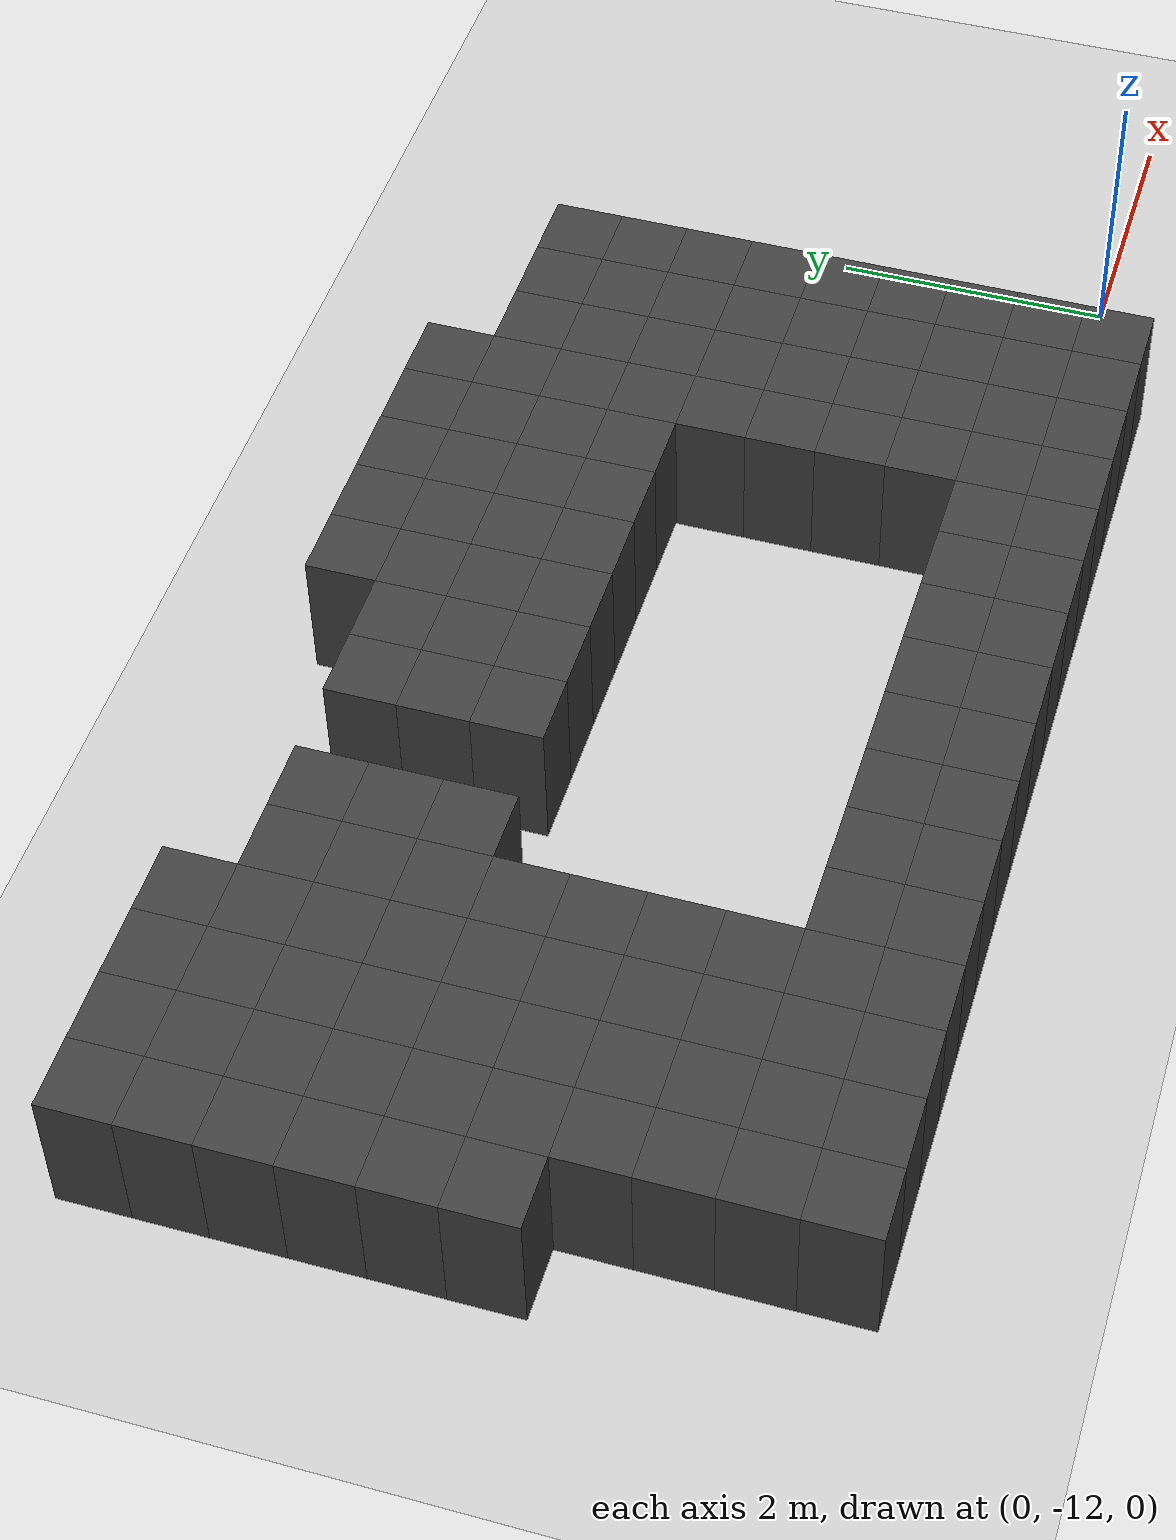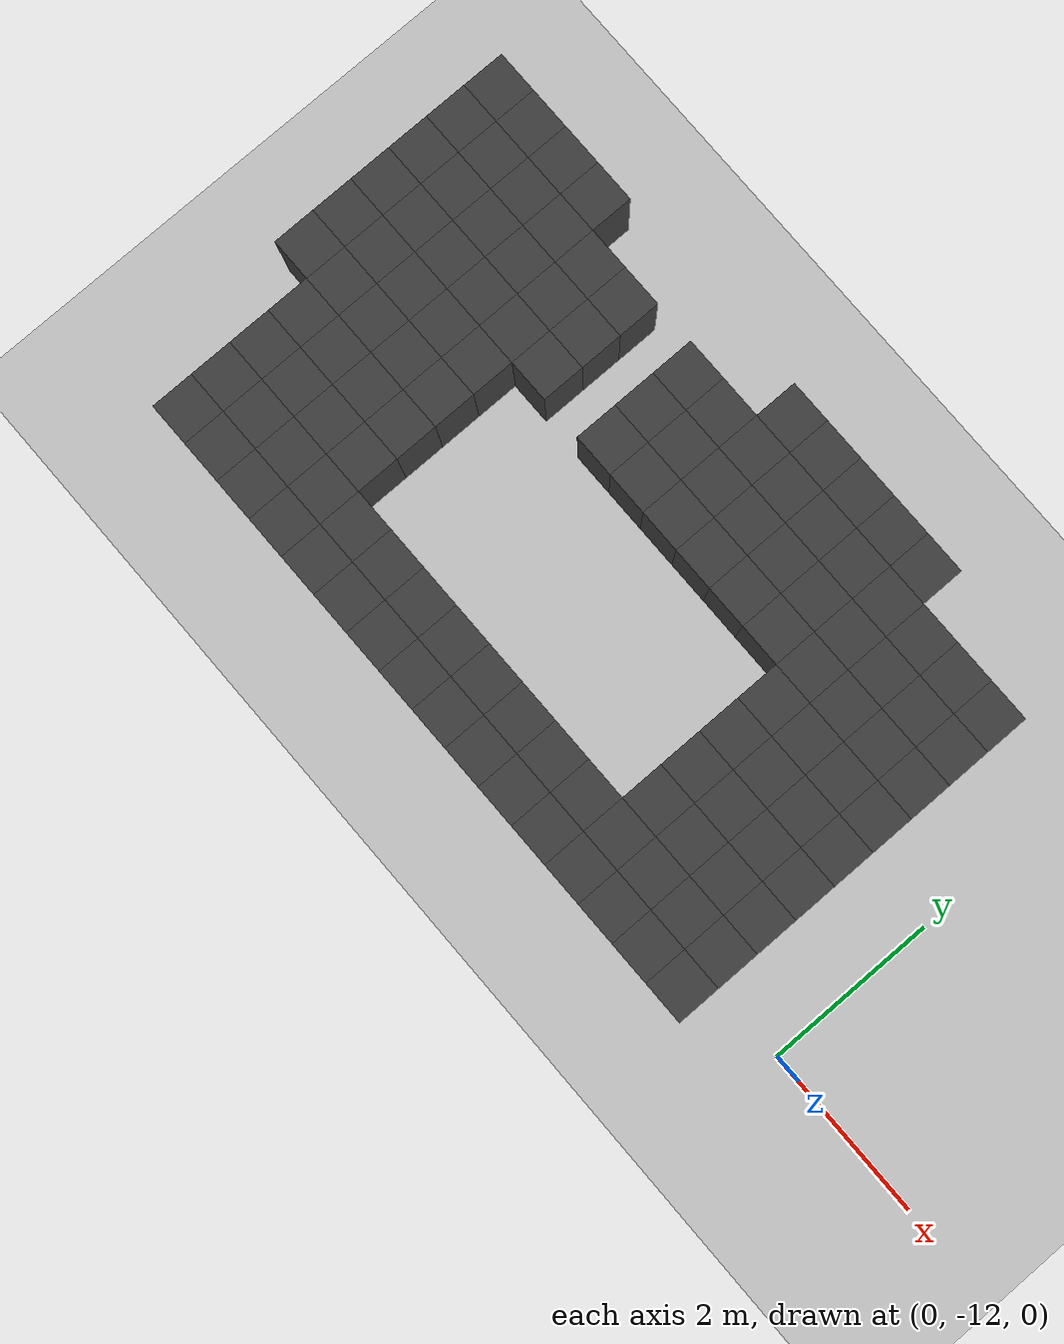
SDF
<sdf version="1.7">
 <world name="map_13994">
  <model name="ground_plane">
   <static>true</static>
   <link name="link">
    <collision name="collision">
     <geometry><plane><normal>0 0 1</normal><size>200 200</size></plane></geometry>
    </collision>
    <visual name="visual">
     <geometry><plane><normal>0 0 1</normal><size>200 200</size></plane></geometry>
     <material><ambient>0.8 0.8 0.8 1</ambient><diffuse>0.8 0.8 0.8 1</diffuse></material>
    </visual>
   </link>
  </model>
  <model name="maze_environment">
   <static>true</static>
   <link name="wall_1338">
    <pose>-9.250 -7.750 0.500 0 0 0</pose>
    <collision name="col"><geometry><box><size>0.5 0.5 1.0</size></box></geometry></collision>
    <visual name="vis">
     <geometry><box><size>0.5 0.5 1.0</size></box></geometry>
     <material><ambient>0.15 0.15 0.15 1</ambient><diffuse>0.25 0.25 0.25 1</diffuse></material>
    </visual>
   </link>
   <link name="wall_1339">
    <pose>-8.750 -7.750 0.500 0 0 0</pose>
    <collision name="col"><geometry><box><size>0.5 0.5 1.0</size></box></geometry></collision>
    <visual name="vis">
     <geometry><box><size>0.5 0.5 1.0</size></box></geometry>
     <material><ambient>0.15 0.15 0.15 1</ambient><diffuse>0.25 0.25 0.25 1</diffuse></material>
    </visual>
   </link>
   <link name="wall_1340">
    <pose>-8.250 -7.750 0.500 0 0 0</pose>
    <collision name="col"><geometry><box><size>0.5 0.5 1.0</size></box></geometry></collision>
    <visual name="vis">
     <geometry><box><size>0.5 0.5 1.0</size></box></geometry>
     <material><ambient>0.15 0.15 0.15 1</ambient><diffuse>0.25 0.25 0.25 1</diffuse></material>
    </visual>
   </link>
   <link name="wall_1341">
    <pose>-7.750 -7.750 0.500 0 0 0</pose>
    <collision name="col"><geometry><box><size>0.5 0.5 1.0</size></box></geometry></collision>
    <visual name="vis">
     <geometry><box><size>0.5 0.5 1.0</size></box></geometry>
     <material><ambient>0.15 0.15 0.15 1</ambient><diffuse>0.25 0.25 0.25 1</diffuse></material>
    </visual>
   </link>
   <link name="wall_1342">
    <pose>-4.750 -7.750 0.500 0 0 0</pose>
    <collision name="col"><geometry><box><size>0.5 0.5 1.0</size></box></geometry></collision>
    <visual name="vis">
     <geometry><box><size>0.5 0.5 1.0</size></box></geometry>
     <material><ambient>0.15 0.15 0.15 1</ambient><diffuse>0.25 0.25 0.25 1</diffuse></material>
    </visual>
   </link>
   <link name="wall_1343">
    <pose>-4.250 -7.750 0.500 0 0 0</pose>
    <collision name="col"><geometry><box><size>0.5 0.5 1.0</size></box></geometry></collision>
    <visual name="vis">
     <geometry><box><size>0.5 0.5 1.0</size></box></geometry>
     <material><ambient>0.15 0.15 0.15 1</ambient><diffuse>0.25 0.25 0.25 1</diffuse></material>
    </visual>
   </link>
   <link name="wall_1344">
    <pose>-3.750 -7.750 0.500 0 0 0</pose>
    <collision name="col"><geometry><box><size>0.5 0.5 1.0</size></box></geometry></collision>
    <visual name="vis">
     <geometry><box><size>0.5 0.5 1.0</size></box></geometry>
     <material><ambient>0.15 0.15 0.15 1</ambient><diffuse>0.25 0.25 0.25 1</diffuse></material>
    </visual>
   </link>
   <link name="wall_1345">
    <pose>-3.250 -7.750 0.500 0 0 0</pose>
    <collision name="col"><geometry><box><size>0.5 0.5 1.0</size></box></geometry></collision>
    <visual name="vis">
     <geometry><box><size>0.5 0.5 1.0</size></box></geometry>
     <material><ambient>0.15 0.15 0.15 1</ambient><diffuse>0.25 0.25 0.25 1</diffuse></material>
    </visual>
   </link>
   <link name="wall_1346">
    <pose>-2.750 -7.750 0.500 0 0 0</pose>
    <collision name="col"><geometry><box><size>0.5 0.5 1.0</size></box></geometry></collision>
    <visual name="vis">
     <geometry><box><size>0.5 0.5 1.0</size></box></geometry>
     <material><ambient>0.15 0.15 0.15 1</ambient><diffuse>0.25 0.25 0.25 1</diffuse></material>
    </visual>
   </link>
   <link name="wall_1377">
    <pose>-9.250 -8.250 0.500 0 0 0</pose>
    <collision name="col"><geometry><box><size>0.5 0.5 1.0</size></box></geometry></collision>
    <visual name="vis">
     <geometry><box><size>0.5 0.5 1.0</size></box></geometry>
     <material><ambient>0.15 0.15 0.15 1</ambient><diffuse>0.25 0.25 0.25 1</diffuse></material>
    </visual>
   </link>
   <link name="wall_1378">
    <pose>-8.750 -8.250 0.500 0 0 0</pose>
    <collision name="col"><geometry><box><size>0.5 0.5 1.0</size></box></geometry></collision>
    <visual name="vis">
     <geometry><box><size>0.5 0.5 1.0</size></box></geometry>
     <material><ambient>0.15 0.15 0.15 1</ambient><diffuse>0.25 0.25 0.25 1</diffuse></material>
    </visual>
   </link>
   <link name="wall_1379">
    <pose>-8.250 -8.250 0.500 0 0 0</pose>
    <collision name="col"><geometry><box><size>0.5 0.5 1.0</size></box></geometry></collision>
    <visual name="vis">
     <geometry><box><size>0.5 0.5 1.0</size></box></geometry>
     <material><ambient>0.15 0.15 0.15 1</ambient><diffuse>0.25 0.25 0.25 1</diffuse></material>
    </visual>
   </link>
   <link name="wall_1380">
    <pose>-7.750 -8.250 0.500 0 0 0</pose>
    <collision name="col"><geometry><box><size>0.5 0.5 1.0</size></box></geometry></collision>
    <visual name="vis">
     <geometry><box><size>0.5 0.5 1.0</size></box></geometry>
     <material><ambient>0.15 0.15 0.15 1</ambient><diffuse>0.25 0.25 0.25 1</diffuse></material>
    </visual>
   </link>
   <link name="wall_1381">
    <pose>-7.250 -8.250 0.500 0 0 0</pose>
    <collision name="col"><geometry><box><size>0.5 0.5 1.0</size></box></geometry></collision>
    <visual name="vis">
     <geometry><box><size>0.5 0.5 1.0</size></box></geometry>
     <material><ambient>0.15 0.15 0.15 1</ambient><diffuse>0.25 0.25 0.25 1</diffuse></material>
    </visual>
   </link>
   <link name="wall_1382">
    <pose>-6.750 -8.250 0.500 0 0 0</pose>
    <collision name="col"><geometry><box><size>0.5 0.5 1.0</size></box></geometry></collision>
    <visual name="vis">
     <geometry><box><size>0.5 0.5 1.0</size></box></geometry>
     <material><ambient>0.15 0.15 0.15 1</ambient><diffuse>0.25 0.25 0.25 1</diffuse></material>
    </visual>
   </link>
   <link name="wall_1383">
    <pose>-5.750 -8.250 0.500 0 0 0</pose>
    <collision name="col"><geometry><box><size>0.5 0.5 1.0</size></box></geometry></collision>
    <visual name="vis">
     <geometry><box><size>0.5 0.5 1.0</size></box></geometry>
     <material><ambient>0.15 0.15 0.15 1</ambient><diffuse>0.25 0.25 0.25 1</diffuse></material>
    </visual>
   </link>
   <link name="wall_1384">
    <pose>-5.250 -8.250 0.500 0 0 0</pose>
    <collision name="col"><geometry><box><size>0.5 0.5 1.0</size></box></geometry></collision>
    <visual name="vis">
     <geometry><box><size>0.5 0.5 1.0</size></box></geometry>
     <material><ambient>0.15 0.15 0.15 1</ambient><diffuse>0.25 0.25 0.25 1</diffuse></material>
    </visual>
   </link>
   <link name="wall_1385">
    <pose>-4.750 -8.250 0.500 0 0 0</pose>
    <collision name="col"><geometry><box><size>0.5 0.5 1.0</size></box></geometry></collision>
    <visual name="vis">
     <geometry><box><size>0.5 0.5 1.0</size></box></geometry>
     <material><ambient>0.15 0.15 0.15 1</ambient><diffuse>0.25 0.25 0.25 1</diffuse></material>
    </visual>
   </link>
   <link name="wall_1386">
    <pose>-4.250 -8.250 0.500 0 0 0</pose>
    <collision name="col"><geometry><box><size>0.5 0.5 1.0</size></box></geometry></collision>
    <visual name="vis">
     <geometry><box><size>0.5 0.5 1.0</size></box></geometry>
     <material><ambient>0.15 0.15 0.15 1</ambient><diffuse>0.25 0.25 0.25 1</diffuse></material>
    </visual>
   </link>
   <link name="wall_1387">
    <pose>-3.750 -8.250 0.500 0 0 0</pose>
    <collision name="col"><geometry><box><size>0.5 0.5 1.0</size></box></geometry></collision>
    <visual name="vis">
     <geometry><box><size>0.5 0.5 1.0</size></box></geometry>
     <material><ambient>0.15 0.15 0.15 1</ambient><diffuse>0.25 0.25 0.25 1</diffuse></material>
    </visual>
   </link>
   <link name="wall_1388">
    <pose>-3.250 -8.250 0.500 0 0 0</pose>
    <collision name="col"><geometry><box><size>0.5 0.5 1.0</size></box></geometry></collision>
    <visual name="vis">
     <geometry><box><size>0.5 0.5 1.0</size></box></geometry>
     <material><ambient>0.15 0.15 0.15 1</ambient><diffuse>0.25 0.25 0.25 1</diffuse></material>
    </visual>
   </link>
   <link name="wall_1389">
    <pose>-2.750 -8.250 0.500 0 0 0</pose>
    <collision name="col"><geometry><box><size>0.5 0.5 1.0</size></box></geometry></collision>
    <visual name="vis">
     <geometry><box><size>0.5 0.5 1.0</size></box></geometry>
     <material><ambient>0.15 0.15 0.15 1</ambient><diffuse>0.25 0.25 0.25 1</diffuse></material>
    </visual>
   </link>
   <link name="wall_1390">
    <pose>-2.250 -8.250 0.500 0 0 0</pose>
    <collision name="col"><geometry><box><size>0.5 0.5 1.0</size></box></geometry></collision>
    <visual name="vis">
     <geometry><box><size>0.5 0.5 1.0</size></box></geometry>
     <material><ambient>0.15 0.15 0.15 1</ambient><diffuse>0.25 0.25 0.25 1</diffuse></material>
    </visual>
   </link>
   <link name="wall_1391">
    <pose>-1.750 -8.250 0.500 0 0 0</pose>
    <collision name="col"><geometry><box><size>0.5 0.5 1.0</size></box></geometry></collision>
    <visual name="vis">
     <geometry><box><size>0.5 0.5 1.0</size></box></geometry>
     <material><ambient>0.15 0.15 0.15 1</ambient><diffuse>0.25 0.25 0.25 1</diffuse></material>
    </visual>
   </link>
   <link name="wall_1392">
    <pose>-1.250 -8.250 0.500 0 0 0</pose>
    <collision name="col"><geometry><box><size>0.5 0.5 1.0</size></box></geometry></collision>
    <visual name="vis">
     <geometry><box><size>0.5 0.5 1.0</size></box></geometry>
     <material><ambient>0.15 0.15 0.15 1</ambient><diffuse>0.25 0.25 0.25 1</diffuse></material>
    </visual>
   </link>
   <link name="wall_1420">
    <pose>-9.250 -8.750 0.500 0 0 0</pose>
    <collision name="col"><geometry><box><size>0.5 0.5 1.0</size></box></geometry></collision>
    <visual name="vis">
     <geometry><box><size>0.5 0.5 1.0</size></box></geometry>
     <material><ambient>0.15 0.15 0.15 1</ambient><diffuse>0.25 0.25 0.25 1</diffuse></material>
    </visual>
   </link>
   <link name="wall_1421">
    <pose>-8.750 -8.750 0.500 0 0 0</pose>
    <collision name="col"><geometry><box><size>0.5 0.5 1.0</size></box></geometry></collision>
    <visual name="vis">
     <geometry><box><size>0.5 0.5 1.0</size></box></geometry>
     <material><ambient>0.15 0.15 0.15 1</ambient><diffuse>0.25 0.25 0.25 1</diffuse></material>
    </visual>
   </link>
   <link name="wall_1422">
    <pose>-8.250 -8.750 0.500 0 0 0</pose>
    <collision name="col"><geometry><box><size>0.5 0.5 1.0</size></box></geometry></collision>
    <visual name="vis">
     <geometry><box><size>0.5 0.5 1.0</size></box></geometry>
     <material><ambient>0.15 0.15 0.15 1</ambient><diffuse>0.25 0.25 0.25 1</diffuse></material>
    </visual>
   </link>
   <link name="wall_1423">
    <pose>-7.750 -8.750 0.500 0 0 0</pose>
    <collision name="col"><geometry><box><size>0.5 0.5 1.0</size></box></geometry></collision>
    <visual name="vis">
     <geometry><box><size>0.5 0.5 1.0</size></box></geometry>
     <material><ambient>0.15 0.15 0.15 1</ambient><diffuse>0.25 0.25 0.25 1</diffuse></material>
    </visual>
   </link>
   <link name="wall_1424">
    <pose>-7.250 -8.750 0.500 0 0 0</pose>
    <collision name="col"><geometry><box><size>0.5 0.5 1.0</size></box></geometry></collision>
    <visual name="vis">
     <geometry><box><size>0.5 0.5 1.0</size></box></geometry>
     <material><ambient>0.15 0.15 0.15 1</ambient><diffuse>0.25 0.25 0.25 1</diffuse></material>
    </visual>
   </link>
   <link name="wall_1425">
    <pose>-6.750 -8.750 0.500 0 0 0</pose>
    <collision name="col"><geometry><box><size>0.5 0.5 1.0</size></box></geometry></collision>
    <visual name="vis">
     <geometry><box><size>0.5 0.5 1.0</size></box></geometry>
     <material><ambient>0.15 0.15 0.15 1</ambient><diffuse>0.25 0.25 0.25 1</diffuse></material>
    </visual>
   </link>
   <link name="wall_1426">
    <pose>-5.750 -8.750 0.500 0 0 0</pose>
    <collision name="col"><geometry><box><size>0.5 0.5 1.0</size></box></geometry></collision>
    <visual name="vis">
     <geometry><box><size>0.5 0.5 1.0</size></box></geometry>
     <material><ambient>0.15 0.15 0.15 1</ambient><diffuse>0.25 0.25 0.25 1</diffuse></material>
    </visual>
   </link>
   <link name="wall_1427">
    <pose>-5.250 -8.750 0.500 0 0 0</pose>
    <collision name="col"><geometry><box><size>0.5 0.5 1.0</size></box></geometry></collision>
    <visual name="vis">
     <geometry><box><size>0.5 0.5 1.0</size></box></geometry>
     <material><ambient>0.15 0.15 0.15 1</ambient><diffuse>0.25 0.25 0.25 1</diffuse></material>
    </visual>
   </link>
   <link name="wall_1428">
    <pose>-4.750 -8.750 0.500 0 0 0</pose>
    <collision name="col"><geometry><box><size>0.5 0.5 1.0</size></box></geometry></collision>
    <visual name="vis">
     <geometry><box><size>0.5 0.5 1.0</size></box></geometry>
     <material><ambient>0.15 0.15 0.15 1</ambient><diffuse>0.25 0.25 0.25 1</diffuse></material>
    </visual>
   </link>
   <link name="wall_1429">
    <pose>-4.250 -8.750 0.500 0 0 0</pose>
    <collision name="col"><geometry><box><size>0.5 0.5 1.0</size></box></geometry></collision>
    <visual name="vis">
     <geometry><box><size>0.5 0.5 1.0</size></box></geometry>
     <material><ambient>0.15 0.15 0.15 1</ambient><diffuse>0.25 0.25 0.25 1</diffuse></material>
    </visual>
   </link>
   <link name="wall_1430">
    <pose>-3.750 -8.750 0.500 0 0 0</pose>
    <collision name="col"><geometry><box><size>0.5 0.5 1.0</size></box></geometry></collision>
    <visual name="vis">
     <geometry><box><size>0.5 0.5 1.0</size></box></geometry>
     <material><ambient>0.15 0.15 0.15 1</ambient><diffuse>0.25 0.25 0.25 1</diffuse></material>
    </visual>
   </link>
   <link name="wall_1431">
    <pose>-3.250 -8.750 0.500 0 0 0</pose>
    <collision name="col"><geometry><box><size>0.5 0.5 1.0</size></box></geometry></collision>
    <visual name="vis">
     <geometry><box><size>0.5 0.5 1.0</size></box></geometry>
     <material><ambient>0.15 0.15 0.15 1</ambient><diffuse>0.25 0.25 0.25 1</diffuse></material>
    </visual>
   </link>
   <link name="wall_1432">
    <pose>-2.750 -8.750 0.500 0 0 0</pose>
    <collision name="col"><geometry><box><size>0.5 0.5 1.0</size></box></geometry></collision>
    <visual name="vis">
     <geometry><box><size>0.5 0.5 1.0</size></box></geometry>
     <material><ambient>0.15 0.15 0.15 1</ambient><diffuse>0.25 0.25 0.25 1</diffuse></material>
    </visual>
   </link>
   <link name="wall_1433">
    <pose>-2.250 -8.750 0.500 0 0 0</pose>
    <collision name="col"><geometry><box><size>0.5 0.5 1.0</size></box></geometry></collision>
    <visual name="vis">
     <geometry><box><size>0.5 0.5 1.0</size></box></geometry>
     <material><ambient>0.15 0.15 0.15 1</ambient><diffuse>0.25 0.25 0.25 1</diffuse></material>
    </visual>
   </link>
   <link name="wall_1434">
    <pose>-1.750 -8.750 0.500 0 0 0</pose>
    <collision name="col"><geometry><box><size>0.5 0.5 1.0</size></box></geometry></collision>
    <visual name="vis">
     <geometry><box><size>0.5 0.5 1.0</size></box></geometry>
     <material><ambient>0.15 0.15 0.15 1</ambient><diffuse>0.25 0.25 0.25 1</diffuse></material>
    </visual>
   </link>
   <link name="wall_1435">
    <pose>-1.250 -8.750 0.500 0 0 0</pose>
    <collision name="col"><geometry><box><size>0.5 0.5 1.0</size></box></geometry></collision>
    <visual name="vis">
     <geometry><box><size>0.5 0.5 1.0</size></box></geometry>
     <material><ambient>0.15 0.15 0.15 1</ambient><diffuse>0.25 0.25 0.25 1</diffuse></material>
    </visual>
   </link>
   <link name="wall_1463">
    <pose>-9.250 -9.250 0.500 0 0 0</pose>
    <collision name="col"><geometry><box><size>0.5 0.5 1.0</size></box></geometry></collision>
    <visual name="vis">
     <geometry><box><size>0.5 0.5 1.0</size></box></geometry>
     <material><ambient>0.15 0.15 0.15 1</ambient><diffuse>0.25 0.25 0.25 1</diffuse></material>
    </visual>
   </link>
   <link name="wall_1464">
    <pose>-8.750 -9.250 0.500 0 0 0</pose>
    <collision name="col"><geometry><box><size>0.5 0.5 1.0</size></box></geometry></collision>
    <visual name="vis">
     <geometry><box><size>0.5 0.5 1.0</size></box></geometry>
     <material><ambient>0.15 0.15 0.15 1</ambient><diffuse>0.25 0.25 0.25 1</diffuse></material>
    </visual>
   </link>
   <link name="wall_1465">
    <pose>-8.250 -9.250 0.500 0 0 0</pose>
    <collision name="col"><geometry><box><size>0.5 0.5 1.0</size></box></geometry></collision>
    <visual name="vis">
     <geometry><box><size>0.5 0.5 1.0</size></box></geometry>
     <material><ambient>0.15 0.15 0.15 1</ambient><diffuse>0.25 0.25 0.25 1</diffuse></material>
    </visual>
   </link>
   <link name="wall_1466">
    <pose>-7.750 -9.250 0.500 0 0 0</pose>
    <collision name="col"><geometry><box><size>0.5 0.5 1.0</size></box></geometry></collision>
    <visual name="vis">
     <geometry><box><size>0.5 0.5 1.0</size></box></geometry>
     <material><ambient>0.15 0.15 0.15 1</ambient><diffuse>0.25 0.25 0.25 1</diffuse></material>
    </visual>
   </link>
   <link name="wall_1467">
    <pose>-7.250 -9.250 0.500 0 0 0</pose>
    <collision name="col"><geometry><box><size>0.5 0.5 1.0</size></box></geometry></collision>
    <visual name="vis">
     <geometry><box><size>0.5 0.5 1.0</size></box></geometry>
     <material><ambient>0.15 0.15 0.15 1</ambient><diffuse>0.25 0.25 0.25 1</diffuse></material>
    </visual>
   </link>
   <link name="wall_1468">
    <pose>-6.750 -9.250 0.500 0 0 0</pose>
    <collision name="col"><geometry><box><size>0.5 0.5 1.0</size></box></geometry></collision>
    <visual name="vis">
     <geometry><box><size>0.5 0.5 1.0</size></box></geometry>
     <material><ambient>0.15 0.15 0.15 1</ambient><diffuse>0.25 0.25 0.25 1</diffuse></material>
    </visual>
   </link>
   <link name="wall_1469">
    <pose>-5.750 -9.250 0.500 0 0 0</pose>
    <collision name="col"><geometry><box><size>0.5 0.5 1.0</size></box></geometry></collision>
    <visual name="vis">
     <geometry><box><size>0.5 0.5 1.0</size></box></geometry>
     <material><ambient>0.15 0.15 0.15 1</ambient><diffuse>0.25 0.25 0.25 1</diffuse></material>
    </visual>
   </link>
   <link name="wall_1470">
    <pose>-5.250 -9.250 0.500 0 0 0</pose>
    <collision name="col"><geometry><box><size>0.5 0.5 1.0</size></box></geometry></collision>
    <visual name="vis">
     <geometry><box><size>0.5 0.5 1.0</size></box></geometry>
     <material><ambient>0.15 0.15 0.15 1</ambient><diffuse>0.25 0.25 0.25 1</diffuse></material>
    </visual>
   </link>
   <link name="wall_1471">
    <pose>-4.750 -9.250 0.500 0 0 0</pose>
    <collision name="col"><geometry><box><size>0.5 0.5 1.0</size></box></geometry></collision>
    <visual name="vis">
     <geometry><box><size>0.5 0.5 1.0</size></box></geometry>
     <material><ambient>0.15 0.15 0.15 1</ambient><diffuse>0.25 0.25 0.25 1</diffuse></material>
    </visual>
   </link>
   <link name="wall_1472">
    <pose>-4.250 -9.250 0.500 0 0 0</pose>
    <collision name="col"><geometry><box><size>0.5 0.5 1.0</size></box></geometry></collision>
    <visual name="vis">
     <geometry><box><size>0.5 0.5 1.0</size></box></geometry>
     <material><ambient>0.15 0.15 0.15 1</ambient><diffuse>0.25 0.25 0.25 1</diffuse></material>
    </visual>
   </link>
   <link name="wall_1473">
    <pose>-3.750 -9.250 0.500 0 0 0</pose>
    <collision name="col"><geometry><box><size>0.5 0.5 1.0</size></box></geometry></collision>
    <visual name="vis">
     <geometry><box><size>0.5 0.5 1.0</size></box></geometry>
     <material><ambient>0.15 0.15 0.15 1</ambient><diffuse>0.25 0.25 0.25 1</diffuse></material>
    </visual>
   </link>
   <link name="wall_1474">
    <pose>-3.250 -9.250 0.500 0 0 0</pose>
    <collision name="col"><geometry><box><size>0.5 0.5 1.0</size></box></geometry></collision>
    <visual name="vis">
     <geometry><box><size>0.5 0.5 1.0</size></box></geometry>
     <material><ambient>0.15 0.15 0.15 1</ambient><diffuse>0.25 0.25 0.25 1</diffuse></material>
    </visual>
   </link>
   <link name="wall_1475">
    <pose>-2.750 -9.250 0.500 0 0 0</pose>
    <collision name="col"><geometry><box><size>0.5 0.5 1.0</size></box></geometry></collision>
    <visual name="vis">
     <geometry><box><size>0.5 0.5 1.0</size></box></geometry>
     <material><ambient>0.15 0.15 0.15 1</ambient><diffuse>0.25 0.25 0.25 1</diffuse></material>
    </visual>
   </link>
   <link name="wall_1476">
    <pose>-2.250 -9.250 0.500 0 0 0</pose>
    <collision name="col"><geometry><box><size>0.5 0.5 1.0</size></box></geometry></collision>
    <visual name="vis">
     <geometry><box><size>0.5 0.5 1.0</size></box></geometry>
     <material><ambient>0.15 0.15 0.15 1</ambient><diffuse>0.25 0.25 0.25 1</diffuse></material>
    </visual>
   </link>
   <link name="wall_1477">
    <pose>-1.750 -9.250 0.500 0 0 0</pose>
    <collision name="col"><geometry><box><size>0.5 0.5 1.0</size></box></geometry></collision>
    <visual name="vis">
     <geometry><box><size>0.5 0.5 1.0</size></box></geometry>
     <material><ambient>0.15 0.15 0.15 1</ambient><diffuse>0.25 0.25 0.25 1</diffuse></material>
    </visual>
   </link>
   <link name="wall_1478">
    <pose>-1.250 -9.250 0.500 0 0 0</pose>
    <collision name="col"><geometry><box><size>0.5 0.5 1.0</size></box></geometry></collision>
    <visual name="vis">
     <geometry><box><size>0.5 0.5 1.0</size></box></geometry>
     <material><ambient>0.15 0.15 0.15 1</ambient><diffuse>0.25 0.25 0.25 1</diffuse></material>
    </visual>
   </link>
   <link name="wall_1506">
    <pose>-9.250 -9.750 0.500 0 0 0</pose>
    <collision name="col"><geometry><box><size>0.5 0.5 1.0</size></box></geometry></collision>
    <visual name="vis">
     <geometry><box><size>0.5 0.5 1.0</size></box></geometry>
     <material><ambient>0.15 0.15 0.15 1</ambient><diffuse>0.25 0.25 0.25 1</diffuse></material>
    </visual>
   </link>
   <link name="wall_1507">
    <pose>-8.750 -9.750 0.500 0 0 0</pose>
    <collision name="col"><geometry><box><size>0.5 0.5 1.0</size></box></geometry></collision>
    <visual name="vis">
     <geometry><box><size>0.5 0.5 1.0</size></box></geometry>
     <material><ambient>0.15 0.15 0.15 1</ambient><diffuse>0.25 0.25 0.25 1</diffuse></material>
    </visual>
   </link>
   <link name="wall_1508">
    <pose>-8.250 -9.750 0.500 0 0 0</pose>
    <collision name="col"><geometry><box><size>0.5 0.5 1.0</size></box></geometry></collision>
    <visual name="vis">
     <geometry><box><size>0.5 0.5 1.0</size></box></geometry>
     <material><ambient>0.15 0.15 0.15 1</ambient><diffuse>0.25 0.25 0.25 1</diffuse></material>
    </visual>
   </link>
   <link name="wall_1509">
    <pose>-7.750 -9.750 0.500 0 0 0</pose>
    <collision name="col"><geometry><box><size>0.5 0.5 1.0</size></box></geometry></collision>
    <visual name="vis">
     <geometry><box><size>0.5 0.5 1.0</size></box></geometry>
     <material><ambient>0.15 0.15 0.15 1</ambient><diffuse>0.25 0.25 0.25 1</diffuse></material>
    </visual>
   </link>
   <link name="wall_1510">
    <pose>-7.250 -9.750 0.500 0 0 0</pose>
    <collision name="col"><geometry><box><size>0.5 0.5 1.0</size></box></geometry></collision>
    <visual name="vis">
     <geometry><box><size>0.5 0.5 1.0</size></box></geometry>
     <material><ambient>0.15 0.15 0.15 1</ambient><diffuse>0.25 0.25 0.25 1</diffuse></material>
    </visual>
   </link>
   <link name="wall_1511">
    <pose>-2.750 -9.750 0.500 0 0 0</pose>
    <collision name="col"><geometry><box><size>0.5 0.5 1.0</size></box></geometry></collision>
    <visual name="vis">
     <geometry><box><size>0.5 0.5 1.0</size></box></geometry>
     <material><ambient>0.15 0.15 0.15 1</ambient><diffuse>0.25 0.25 0.25 1</diffuse></material>
    </visual>
   </link>
   <link name="wall_1512">
    <pose>-2.250 -9.750 0.500 0 0 0</pose>
    <collision name="col"><geometry><box><size>0.5 0.5 1.0</size></box></geometry></collision>
    <visual name="vis">
     <geometry><box><size>0.5 0.5 1.0</size></box></geometry>
     <material><ambient>0.15 0.15 0.15 1</ambient><diffuse>0.25 0.25 0.25 1</diffuse></material>
    </visual>
   </link>
   <link name="wall_1513">
    <pose>-1.750 -9.750 0.500 0 0 0</pose>
    <collision name="col"><geometry><box><size>0.5 0.5 1.0</size></box></geometry></collision>
    <visual name="vis">
     <geometry><box><size>0.5 0.5 1.0</size></box></geometry>
     <material><ambient>0.15 0.15 0.15 1</ambient><diffuse>0.25 0.25 0.25 1</diffuse></material>
    </visual>
   </link>
   <link name="wall_1514">
    <pose>-1.250 -9.750 0.500 0 0 0</pose>
    <collision name="col"><geometry><box><size>0.5 0.5 1.0</size></box></geometry></collision>
    <visual name="vis">
     <geometry><box><size>0.5 0.5 1.0</size></box></geometry>
     <material><ambient>0.15 0.15 0.15 1</ambient><diffuse>0.25 0.25 0.25 1</diffuse></material>
    </visual>
   </link>
   <link name="wall_1542">
    <pose>-9.250 -10.250 0.500 0 0 0</pose>
    <collision name="col"><geometry><box><size>0.5 0.5 1.0</size></box></geometry></collision>
    <visual name="vis">
     <geometry><box><size>0.5 0.5 1.0</size></box></geometry>
     <material><ambient>0.15 0.15 0.15 1</ambient><diffuse>0.25 0.25 0.25 1</diffuse></material>
    </visual>
   </link>
   <link name="wall_1543">
    <pose>-8.750 -10.250 0.500 0 0 0</pose>
    <collision name="col"><geometry><box><size>0.5 0.5 1.0</size></box></geometry></collision>
    <visual name="vis">
     <geometry><box><size>0.5 0.5 1.0</size></box></geometry>
     <material><ambient>0.15 0.15 0.15 1</ambient><diffuse>0.25 0.25 0.25 1</diffuse></material>
    </visual>
   </link>
   <link name="wall_1544">
    <pose>-8.250 -10.250 0.500 0 0 0</pose>
    <collision name="col"><geometry><box><size>0.5 0.5 1.0</size></box></geometry></collision>
    <visual name="vis">
     <geometry><box><size>0.5 0.5 1.0</size></box></geometry>
     <material><ambient>0.15 0.15 0.15 1</ambient><diffuse>0.25 0.25 0.25 1</diffuse></material>
    </visual>
   </link>
   <link name="wall_1545">
    <pose>-7.750 -10.250 0.500 0 0 0</pose>
    <collision name="col"><geometry><box><size>0.5 0.5 1.0</size></box></geometry></collision>
    <visual name="vis">
     <geometry><box><size>0.5 0.5 1.0</size></box></geometry>
     <material><ambient>0.15 0.15 0.15 1</ambient><diffuse>0.25 0.25 0.25 1</diffuse></material>
    </visual>
   </link>
   <link name="wall_1546">
    <pose>-7.250 -10.250 0.500 0 0 0</pose>
    <collision name="col"><geometry><box><size>0.5 0.5 1.0</size></box></geometry></collision>
    <visual name="vis">
     <geometry><box><size>0.5 0.5 1.0</size></box></geometry>
     <material><ambient>0.15 0.15 0.15 1</ambient><diffuse>0.25 0.25 0.25 1</diffuse></material>
    </visual>
   </link>
   <link name="wall_1547">
    <pose>-2.750 -10.250 0.500 0 0 0</pose>
    <collision name="col"><geometry><box><size>0.5 0.5 1.0</size></box></geometry></collision>
    <visual name="vis">
     <geometry><box><size>0.5 0.5 1.0</size></box></geometry>
     <material><ambient>0.15 0.15 0.15 1</ambient><diffuse>0.25 0.25 0.25 1</diffuse></material>
    </visual>
   </link>
   <link name="wall_1548">
    <pose>-2.250 -10.250 0.500 0 0 0</pose>
    <collision name="col"><geometry><box><size>0.5 0.5 1.0</size></box></geometry></collision>
    <visual name="vis">
     <geometry><box><size>0.5 0.5 1.0</size></box></geometry>
     <material><ambient>0.15 0.15 0.15 1</ambient><diffuse>0.25 0.25 0.25 1</diffuse></material>
    </visual>
   </link>
   <link name="wall_1549">
    <pose>-1.750 -10.250 0.500 0 0 0</pose>
    <collision name="col"><geometry><box><size>0.5 0.5 1.0</size></box></geometry></collision>
    <visual name="vis">
     <geometry><box><size>0.5 0.5 1.0</size></box></geometry>
     <material><ambient>0.15 0.15 0.15 1</ambient><diffuse>0.25 0.25 0.25 1</diffuse></material>
    </visual>
   </link>
   <link name="wall_1550">
    <pose>-1.250 -10.250 0.500 0 0 0</pose>
    <collision name="col"><geometry><box><size>0.5 0.5 1.0</size></box></geometry></collision>
    <visual name="vis">
     <geometry><box><size>0.5 0.5 1.0</size></box></geometry>
     <material><ambient>0.15 0.15 0.15 1</ambient><diffuse>0.25 0.25 0.25 1</diffuse></material>
    </visual>
   </link>
   <link name="wall_1579">
    <pose>-8.750 -10.750 0.500 0 0 0</pose>
    <collision name="col"><geometry><box><size>0.5 0.5 1.0</size></box></geometry></collision>
    <visual name="vis">
     <geometry><box><size>0.5 0.5 1.0</size></box></geometry>
     <material><ambient>0.15 0.15 0.15 1</ambient><diffuse>0.25 0.25 0.25 1</diffuse></material>
    </visual>
   </link>
   <link name="wall_1580">
    <pose>-8.250 -10.750 0.500 0 0 0</pose>
    <collision name="col"><geometry><box><size>0.5 0.5 1.0</size></box></geometry></collision>
    <visual name="vis">
     <geometry><box><size>0.5 0.5 1.0</size></box></geometry>
     <material><ambient>0.15 0.15 0.15 1</ambient><diffuse>0.25 0.25 0.25 1</diffuse></material>
    </visual>
   </link>
   <link name="wall_1581">
    <pose>-7.750 -10.750 0.500 0 0 0</pose>
    <collision name="col"><geometry><box><size>0.5 0.5 1.0</size></box></geometry></collision>
    <visual name="vis">
     <geometry><box><size>0.5 0.5 1.0</size></box></geometry>
     <material><ambient>0.15 0.15 0.15 1</ambient><diffuse>0.25 0.25 0.25 1</diffuse></material>
    </visual>
   </link>
   <link name="wall_1582">
    <pose>-7.250 -10.750 0.500 0 0 0</pose>
    <collision name="col"><geometry><box><size>0.5 0.5 1.0</size></box></geometry></collision>
    <visual name="vis">
     <geometry><box><size>0.5 0.5 1.0</size></box></geometry>
     <material><ambient>0.15 0.15 0.15 1</ambient><diffuse>0.25 0.25 0.25 1</diffuse></material>
    </visual>
   </link>
   <link name="wall_1583">
    <pose>-2.750 -10.750 0.500 0 0 0</pose>
    <collision name="col"><geometry><box><size>0.5 0.5 1.0</size></box></geometry></collision>
    <visual name="vis">
     <geometry><box><size>0.5 0.5 1.0</size></box></geometry>
     <material><ambient>0.15 0.15 0.15 1</ambient><diffuse>0.25 0.25 0.25 1</diffuse></material>
    </visual>
   </link>
   <link name="wall_1584">
    <pose>-2.250 -10.750 0.500 0 0 0</pose>
    <collision name="col"><geometry><box><size>0.5 0.5 1.0</size></box></geometry></collision>
    <visual name="vis">
     <geometry><box><size>0.5 0.5 1.0</size></box></geometry>
     <material><ambient>0.15 0.15 0.15 1</ambient><diffuse>0.25 0.25 0.25 1</diffuse></material>
    </visual>
   </link>
   <link name="wall_1585">
    <pose>-1.750 -10.750 0.500 0 0 0</pose>
    <collision name="col"><geometry><box><size>0.5 0.5 1.0</size></box></geometry></collision>
    <visual name="vis">
     <geometry><box><size>0.5 0.5 1.0</size></box></geometry>
     <material><ambient>0.15 0.15 0.15 1</ambient><diffuse>0.25 0.25 0.25 1</diffuse></material>
    </visual>
   </link>
   <link name="wall_1586">
    <pose>-1.250 -10.750 0.500 0 0 0</pose>
    <collision name="col"><geometry><box><size>0.5 0.5 1.0</size></box></geometry></collision>
    <visual name="vis">
     <geometry><box><size>0.5 0.5 1.0</size></box></geometry>
     <material><ambient>0.15 0.15 0.15 1</ambient><diffuse>0.25 0.25 0.25 1</diffuse></material>
    </visual>
   </link>
   <link name="wall_1617">
    <pose>-8.750 -11.250 0.500 0 0 0</pose>
    <collision name="col"><geometry><box><size>0.5 0.5 1.0</size></box></geometry></collision>
    <visual name="vis">
     <geometry><box><size>0.5 0.5 1.0</size></box></geometry>
     <material><ambient>0.15 0.15 0.15 1</ambient><diffuse>0.25 0.25 0.25 1</diffuse></material>
    </visual>
   </link>
   <link name="wall_1618">
    <pose>-8.250 -11.250 0.500 0 0 0</pose>
    <collision name="col"><geometry><box><size>0.5 0.5 1.0</size></box></geometry></collision>
    <visual name="vis">
     <geometry><box><size>0.5 0.5 1.0</size></box></geometry>
     <material><ambient>0.15 0.15 0.15 1</ambient><diffuse>0.25 0.25 0.25 1</diffuse></material>
    </visual>
   </link>
   <link name="wall_1619">
    <pose>-7.750 -11.250 0.500 0 0 0</pose>
    <collision name="col"><geometry><box><size>0.5 0.5 1.0</size></box></geometry></collision>
    <visual name="vis">
     <geometry><box><size>0.5 0.5 1.0</size></box></geometry>
     <material><ambient>0.15 0.15 0.15 1</ambient><diffuse>0.25 0.25 0.25 1</diffuse></material>
    </visual>
   </link>
   <link name="wall_1620">
    <pose>-7.250 -11.250 0.500 0 0 0</pose>
    <collision name="col"><geometry><box><size>0.5 0.5 1.0</size></box></geometry></collision>
    <visual name="vis">
     <geometry><box><size>0.5 0.5 1.0</size></box></geometry>
     <material><ambient>0.15 0.15 0.15 1</ambient><diffuse>0.25 0.25 0.25 1</diffuse></material>
    </visual>
   </link>
   <link name="wall_1621">
    <pose>-2.750 -11.250 0.500 0 0 0</pose>
    <collision name="col"><geometry><box><size>0.5 0.5 1.0</size></box></geometry></collision>
    <visual name="vis">
     <geometry><box><size>0.5 0.5 1.0</size></box></geometry>
     <material><ambient>0.15 0.15 0.15 1</ambient><diffuse>0.25 0.25 0.25 1</diffuse></material>
    </visual>
   </link>
   <link name="wall_1622">
    <pose>-2.250 -11.250 0.500 0 0 0</pose>
    <collision name="col"><geometry><box><size>0.5 0.5 1.0</size></box></geometry></collision>
    <visual name="vis">
     <geometry><box><size>0.5 0.5 1.0</size></box></geometry>
     <material><ambient>0.15 0.15 0.15 1</ambient><diffuse>0.25 0.25 0.25 1</diffuse></material>
    </visual>
   </link>
   <link name="wall_1623">
    <pose>-1.750 -11.250 0.500 0 0 0</pose>
    <collision name="col"><geometry><box><size>0.5 0.5 1.0</size></box></geometry></collision>
    <visual name="vis">
     <geometry><box><size>0.5 0.5 1.0</size></box></geometry>
     <material><ambient>0.15 0.15 0.15 1</ambient><diffuse>0.25 0.25 0.25 1</diffuse></material>
    </visual>
   </link>
   <link name="wall_1624">
    <pose>-1.250 -11.250 0.500 0 0 0</pose>
    <collision name="col"><geometry><box><size>0.5 0.5 1.0</size></box></geometry></collision>
    <visual name="vis">
     <geometry><box><size>0.5 0.5 1.0</size></box></geometry>
     <material><ambient>0.15 0.15 0.15 1</ambient><diffuse>0.25 0.25 0.25 1</diffuse></material>
    </visual>
   </link>
   <link name="wall_1644">
    <pose>-8.750 -11.750 0.500 0 0 0</pose>
    <collision name="col"><geometry><box><size>0.5 0.5 1.0</size></box></geometry></collision>
    <visual name="vis">
     <geometry><box><size>0.5 0.5 1.0</size></box></geometry>
     <material><ambient>0.15 0.15 0.15 1</ambient><diffuse>0.25 0.25 0.25 1</diffuse></material>
    </visual>
   </link>
   <link name="wall_1645">
    <pose>-8.250 -11.750 0.500 0 0 0</pose>
    <collision name="col"><geometry><box><size>0.5 0.5 1.0</size></box></geometry></collision>
    <visual name="vis">
     <geometry><box><size>0.5 0.5 1.0</size></box></geometry>
     <material><ambient>0.15 0.15 0.15 1</ambient><diffuse>0.25 0.25 0.25 1</diffuse></material>
    </visual>
   </link>
   <link name="wall_1646">
    <pose>-7.750 -11.750 0.500 0 0 0</pose>
    <collision name="col"><geometry><box><size>0.5 0.5 1.0</size></box></geometry></collision>
    <visual name="vis">
     <geometry><box><size>0.5 0.5 1.0</size></box></geometry>
     <material><ambient>0.15 0.15 0.15 1</ambient><diffuse>0.25 0.25 0.25 1</diffuse></material>
    </visual>
   </link>
   <link name="wall_1647">
    <pose>-7.250 -11.750 0.500 0 0 0</pose>
    <collision name="col"><geometry><box><size>0.5 0.5 1.0</size></box></geometry></collision>
    <visual name="vis">
     <geometry><box><size>0.5 0.5 1.0</size></box></geometry>
     <material><ambient>0.15 0.15 0.15 1</ambient><diffuse>0.25 0.25 0.25 1</diffuse></material>
    </visual>
   </link>
   <link name="wall_1648">
    <pose>-6.750 -11.750 0.500 0 0 0</pose>
    <collision name="col"><geometry><box><size>0.5 0.5 1.0</size></box></geometry></collision>
    <visual name="vis">
     <geometry><box><size>0.5 0.5 1.0</size></box></geometry>
     <material><ambient>0.15 0.15 0.15 1</ambient><diffuse>0.25 0.25 0.25 1</diffuse></material>
    </visual>
   </link>
   <link name="wall_1649">
    <pose>-6.250 -11.750 0.500 0 0 0</pose>
    <collision name="col"><geometry><box><size>0.5 0.5 1.0</size></box></geometry></collision>
    <visual name="vis">
     <geometry><box><size>0.5 0.5 1.0</size></box></geometry>
     <material><ambient>0.15 0.15 0.15 1</ambient><diffuse>0.25 0.25 0.25 1</diffuse></material>
    </visual>
   </link>
   <link name="wall_1650">
    <pose>-5.750 -11.750 0.500 0 0 0</pose>
    <collision name="col"><geometry><box><size>0.5 0.5 1.0</size></box></geometry></collision>
    <visual name="vis">
     <geometry><box><size>0.5 0.5 1.0</size></box></geometry>
     <material><ambient>0.15 0.15 0.15 1</ambient><diffuse>0.25 0.25 0.25 1</diffuse></material>
    </visual>
   </link>
   <link name="wall_1651">
    <pose>-5.250 -11.750 0.500 0 0 0</pose>
    <collision name="col"><geometry><box><size>0.5 0.5 1.0</size></box></geometry></collision>
    <visual name="vis">
     <geometry><box><size>0.5 0.5 1.0</size></box></geometry>
     <material><ambient>0.15 0.15 0.15 1</ambient><diffuse>0.25 0.25 0.25 1</diffuse></material>
    </visual>
   </link>
   <link name="wall_1652">
    <pose>-4.750 -11.750 0.500 0 0 0</pose>
    <collision name="col"><geometry><box><size>0.5 0.5 1.0</size></box></geometry></collision>
    <visual name="vis">
     <geometry><box><size>0.5 0.5 1.0</size></box></geometry>
     <material><ambient>0.15 0.15 0.15 1</ambient><diffuse>0.25 0.25 0.25 1</diffuse></material>
    </visual>
   </link>
   <link name="wall_1653">
    <pose>-4.250 -11.750 0.500 0 0 0</pose>
    <collision name="col"><geometry><box><size>0.5 0.5 1.0</size></box></geometry></collision>
    <visual name="vis">
     <geometry><box><size>0.5 0.5 1.0</size></box></geometry>
     <material><ambient>0.15 0.15 0.15 1</ambient><diffuse>0.25 0.25 0.25 1</diffuse></material>
    </visual>
   </link>
   <link name="wall_1654">
    <pose>-3.750 -11.750 0.500 0 0 0</pose>
    <collision name="col"><geometry><box><size>0.5 0.5 1.0</size></box></geometry></collision>
    <visual name="vis">
     <geometry><box><size>0.5 0.5 1.0</size></box></geometry>
     <material><ambient>0.15 0.15 0.15 1</ambient><diffuse>0.25 0.25 0.25 1</diffuse></material>
    </visual>
   </link>
   <link name="wall_1655">
    <pose>-3.250 -11.750 0.500 0 0 0</pose>
    <collision name="col"><geometry><box><size>0.5 0.5 1.0</size></box></geometry></collision>
    <visual name="vis">
     <geometry><box><size>0.5 0.5 1.0</size></box></geometry>
     <material><ambient>0.15 0.15 0.15 1</ambient><diffuse>0.25 0.25 0.25 1</diffuse></material>
    </visual>
   </link>
   <link name="wall_1656">
    <pose>-2.750 -11.750 0.500 0 0 0</pose>
    <collision name="col"><geometry><box><size>0.5 0.5 1.0</size></box></geometry></collision>
    <visual name="vis">
     <geometry><box><size>0.5 0.5 1.0</size></box></geometry>
     <material><ambient>0.15 0.15 0.15 1</ambient><diffuse>0.25 0.25 0.25 1</diffuse></material>
    </visual>
   </link>
   <link name="wall_1657">
    <pose>-2.250 -11.750 0.500 0 0 0</pose>
    <collision name="col"><geometry><box><size>0.5 0.5 1.0</size></box></geometry></collision>
    <visual name="vis">
     <geometry><box><size>0.5 0.5 1.0</size></box></geometry>
     <material><ambient>0.15 0.15 0.15 1</ambient><diffuse>0.25 0.25 0.25 1</diffuse></material>
    </visual>
   </link>
   <link name="wall_1658">
    <pose>-1.750 -11.750 0.500 0 0 0</pose>
    <collision name="col"><geometry><box><size>0.5 0.5 1.0</size></box></geometry></collision>
    <visual name="vis">
     <geometry><box><size>0.5 0.5 1.0</size></box></geometry>
     <material><ambient>0.15 0.15 0.15 1</ambient><diffuse>0.25 0.25 0.25 1</diffuse></material>
    </visual>
   </link>
   <link name="wall_1659">
    <pose>-1.250 -11.750 0.500 0 0 0</pose>
    <collision name="col"><geometry><box><size>0.5 0.5 1.0</size></box></geometry></collision>
    <visual name="vis">
     <geometry><box><size>0.5 0.5 1.0</size></box></geometry>
     <material><ambient>0.15 0.15 0.15 1</ambient><diffuse>0.25 0.25 0.25 1</diffuse></material>
    </visual>
   </link>
   <link name="wall_1691">
    <pose>-8.750 -12.250 0.500 0 0 0</pose>
    <collision name="col"><geometry><box><size>0.5 0.5 1.0</size></box></geometry></collision>
    <visual name="vis">
     <geometry><box><size>0.5 0.5 1.0</size></box></geometry>
     <material><ambient>0.15 0.15 0.15 1</ambient><diffuse>0.25 0.25 0.25 1</diffuse></material>
    </visual>
   </link>
   <link name="wall_1692">
    <pose>-8.250 -12.250 0.500 0 0 0</pose>
    <collision name="col"><geometry><box><size>0.5 0.5 1.0</size></box></geometry></collision>
    <visual name="vis">
     <geometry><box><size>0.5 0.5 1.0</size></box></geometry>
     <material><ambient>0.15 0.15 0.15 1</ambient><diffuse>0.25 0.25 0.25 1</diffuse></material>
    </visual>
   </link>
   <link name="wall_1693">
    <pose>-7.750 -12.250 0.500 0 0 0</pose>
    <collision name="col"><geometry><box><size>0.5 0.5 1.0</size></box></geometry></collision>
    <visual name="vis">
     <geometry><box><size>0.5 0.5 1.0</size></box></geometry>
     <material><ambient>0.15 0.15 0.15 1</ambient><diffuse>0.25 0.25 0.25 1</diffuse></material>
    </visual>
   </link>
   <link name="wall_1694">
    <pose>-7.250 -12.250 0.500 0 0 0</pose>
    <collision name="col"><geometry><box><size>0.5 0.5 1.0</size></box></geometry></collision>
    <visual name="vis">
     <geometry><box><size>0.5 0.5 1.0</size></box></geometry>
     <material><ambient>0.15 0.15 0.15 1</ambient><diffuse>0.25 0.25 0.25 1</diffuse></material>
    </visual>
   </link>
   <link name="wall_1695">
    <pose>-6.750 -12.250 0.500 0 0 0</pose>
    <collision name="col"><geometry><box><size>0.5 0.5 1.0</size></box></geometry></collision>
    <visual name="vis">
     <geometry><box><size>0.5 0.5 1.0</size></box></geometry>
     <material><ambient>0.15 0.15 0.15 1</ambient><diffuse>0.25 0.25 0.25 1</diffuse></material>
    </visual>
   </link>
   <link name="wall_1696">
    <pose>-6.250 -12.250 0.500 0 0 0</pose>
    <collision name="col"><geometry><box><size>0.5 0.5 1.0</size></box></geometry></collision>
    <visual name="vis">
     <geometry><box><size>0.5 0.5 1.0</size></box></geometry>
     <material><ambient>0.15 0.15 0.15 1</ambient><diffuse>0.25 0.25 0.25 1</diffuse></material>
    </visual>
   </link>
   <link name="wall_1697">
    <pose>-5.750 -12.250 0.500 0 0 0</pose>
    <collision name="col"><geometry><box><size>0.5 0.5 1.0</size></box></geometry></collision>
    <visual name="vis">
     <geometry><box><size>0.5 0.5 1.0</size></box></geometry>
     <material><ambient>0.15 0.15 0.15 1</ambient><diffuse>0.25 0.25 0.25 1</diffuse></material>
    </visual>
   </link>
   <link name="wall_1698">
    <pose>-5.250 -12.250 0.500 0 0 0</pose>
    <collision name="col"><geometry><box><size>0.5 0.5 1.0</size></box></geometry></collision>
    <visual name="vis">
     <geometry><box><size>0.5 0.5 1.0</size></box></geometry>
     <material><ambient>0.15 0.15 0.15 1</ambient><diffuse>0.25 0.25 0.25 1</diffuse></material>
    </visual>
   </link>
   <link name="wall_1699">
    <pose>-4.750 -12.250 0.500 0 0 0</pose>
    <collision name="col"><geometry><box><size>0.5 0.5 1.0</size></box></geometry></collision>
    <visual name="vis">
     <geometry><box><size>0.5 0.5 1.0</size></box></geometry>
     <material><ambient>0.15 0.15 0.15 1</ambient><diffuse>0.25 0.25 0.25 1</diffuse></material>
    </visual>
   </link>
   <link name="wall_1700">
    <pose>-4.250 -12.250 0.500 0 0 0</pose>
    <collision name="col"><geometry><box><size>0.5 0.5 1.0</size></box></geometry></collision>
    <visual name="vis">
     <geometry><box><size>0.5 0.5 1.0</size></box></geometry>
     <material><ambient>0.15 0.15 0.15 1</ambient><diffuse>0.25 0.25 0.25 1</diffuse></material>
    </visual>
   </link>
   <link name="wall_1701">
    <pose>-3.750 -12.250 0.500 0 0 0</pose>
    <collision name="col"><geometry><box><size>0.5 0.5 1.0</size></box></geometry></collision>
    <visual name="vis">
     <geometry><box><size>0.5 0.5 1.0</size></box></geometry>
     <material><ambient>0.15 0.15 0.15 1</ambient><diffuse>0.25 0.25 0.25 1</diffuse></material>
    </visual>
   </link>
   <link name="wall_1702">
    <pose>-3.250 -12.250 0.500 0 0 0</pose>
    <collision name="col"><geometry><box><size>0.5 0.5 1.0</size></box></geometry></collision>
    <visual name="vis">
     <geometry><box><size>0.5 0.5 1.0</size></box></geometry>
     <material><ambient>0.15 0.15 0.15 1</ambient><diffuse>0.25 0.25 0.25 1</diffuse></material>
    </visual>
   </link>
   <link name="wall_1703">
    <pose>-2.750 -12.250 0.500 0 0 0</pose>
    <collision name="col"><geometry><box><size>0.5 0.5 1.0</size></box></geometry></collision>
    <visual name="vis">
     <geometry><box><size>0.5 0.5 1.0</size></box></geometry>
     <material><ambient>0.15 0.15 0.15 1</ambient><diffuse>0.25 0.25 0.25 1</diffuse></material>
    </visual>
   </link>
   <link name="wall_1704">
    <pose>-2.250 -12.250 0.500 0 0 0</pose>
    <collision name="col"><geometry><box><size>0.5 0.5 1.0</size></box></geometry></collision>
    <visual name="vis">
     <geometry><box><size>0.5 0.5 1.0</size></box></geometry>
     <material><ambient>0.15 0.15 0.15 1</ambient><diffuse>0.25 0.25 0.25 1</diffuse></material>
    </visual>
   </link>
   <link name="wall_1705">
    <pose>-1.750 -12.250 0.500 0 0 0</pose>
    <collision name="col"><geometry><box><size>0.5 0.5 1.0</size></box></geometry></collision>
    <visual name="vis">
     <geometry><box><size>0.5 0.5 1.0</size></box></geometry>
     <material><ambient>0.15 0.15 0.15 1</ambient><diffuse>0.25 0.25 0.25 1</diffuse></material>
    </visual>
   </link>
   <link name="wall_1706">
    <pose>-1.250 -12.250 0.500 0 0 0</pose>
    <collision name="col"><geometry><box><size>0.5 0.5 1.0</size></box></geometry></collision>
    <visual name="vis">
     <geometry><box><size>0.5 0.5 1.0</size></box></geometry>
     <material><ambient>0.15 0.15 0.15 1</ambient><diffuse>0.25 0.25 0.25 1</diffuse></material>
    </visual>
   </link>
  </model>
 </world>
</sdf>
